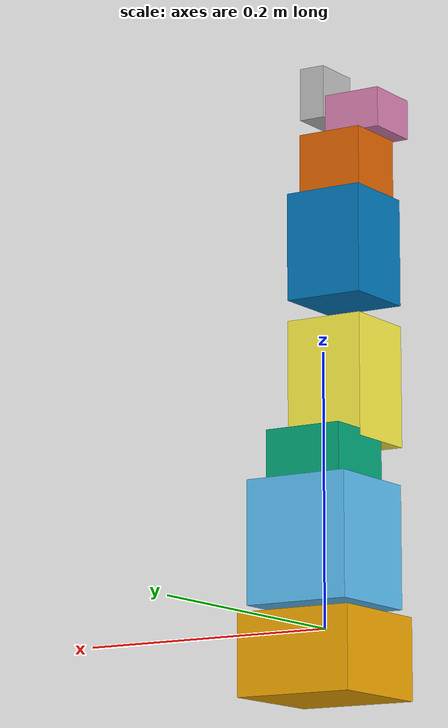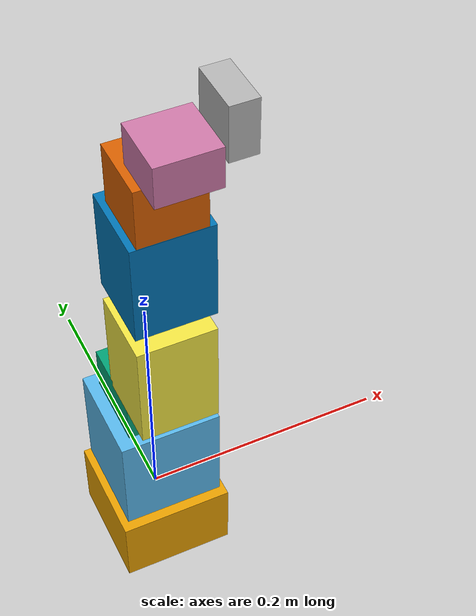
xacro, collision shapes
<?xml version="1.0"?>
<robot xmlns:xacro="http://www.ros.org/wiki/xacro">
  <xacro:property name="mesh" value="package://mycobot_description/meshes/mycobot_280_arduino"/>
  <xacro:property name="vel" value="3.14"/>
  <xacro:property name="eff" value="50.0"/>

  <!-- ================= LINKS ================= -->
  <link name="g_base">
    <visual>
      <geometry><mesh filename="${mesh}/G_base.dae"/></geometry>
      <origin xyz="-0.01 0 -0.032" rpy="0 0 1.5708"/>
    </visual>
    <collision>
      <geometry><box size="0.09 0.09 0.06"/></geometry>
      <origin xyz="0 0 -0.02" rpy="0 0 0"/>
    </collision>
    <xacro:box_inertial mass="0.5" size="0.05"/>
  </link>

  <link name="joint1">
    <visual>
      <geometry><mesh filename="${mesh}/joint1.dae"/></geometry>
      <origin xyz="0 0 0" rpy="0 0 -3.14159"/>
    </visual>
    <collision>
      <geometry><box size="0.08 0.08 0.09"/></geometry>
      <origin xyz="0 0 0.06" rpy="0 0 0"/>
    </collision>
    <xacro:box_inertial mass="0.3" size="0.04"/>
  </link>

  <link name="joint2">
    <visual>
      <geometry><mesh filename="${mesh}/joint2.dae"/></geometry>
      <origin xyz="0 0 -0.06096" rpy="0 0 -1.5708"/>
    </visual>
    <collision>
      <geometry><box size="0.06 0.06 0.08"/></geometry>
      <origin xyz="0 0 -0.03" rpy="0 0 0"/>
    </collision>
    <xacro:box_inertial mass="0.3" size="0.04"/>
  </link>

  <link name="joint3">
    <visual>
      <geometry><mesh filename="${mesh}/joint3.dae"/></geometry>
      <origin xyz="0 0 0.03256" rpy="0 -1.5708 0"/>
    </visual>
    <collision>
      <geometry><box size="0.09 0.06 0.06"/></geometry>
      <origin xyz="-0.05 0 0.03" rpy="0 0 0"/>
    </collision>
    <xacro:box_inertial mass="0.25" size="0.04"/>
  </link>

  <link name="joint4">
    <visual>
      <geometry><mesh filename="${mesh}/joint4.dae"/></geometry>
      <origin xyz="0 0 0.03056" rpy="0 -1.5708 0"/>
    </visual>
    <collision>
      <geometry><box size="0.08 0.06 0.06"/></geometry>
      <origin xyz="-0.04 0 0.03" rpy="0 0 0"/>
    </collision>
    <xacro:box_inertial mass="0.2" size="0.035"/>
  </link>

  <link name="joint5">
    <visual>
      <geometry><mesh filename="${mesh}/joint5.dae"/></geometry>
      <origin xyz="0 0 -0.03356" rpy="-1.5708 0 0"/>
    </visual>
    <collision>
      <geometry><box size="0.05 0.06 0.05"/></geometry>
      <origin xyz="0 0 -0.03" rpy="0 0 0"/>
    </collision>
    <xacro:box_inertial mass="0.2" size="0.035"/>
  </link>

  <link name="joint6">
    <visual>
      <geometry><mesh filename="${mesh}/joint6.dae"/></geometry>
      <origin xyz="0 0 -0.038" rpy="0 0 0"/>
    </visual>
    <collision>
      <geometry><box size="0.045 0.045 0.03"/></geometry>
      <origin xyz="0 0 -0.02" rpy="0 0 0"/>
    </collision>
    <xacro:box_inertial mass="0.15" size="0.03"/>
  </link>

  <link name="joint6_flange">
    <visual>
      <geometry><mesh filename="${mesh}/joint7.dae"/></geometry>
      <origin xyz="0 0 -0.012" rpy="0 0 0"/>
    </visual>
    <collision>
      <geometry><box size="0.04 0.04 0.02"/></geometry>
      <origin xyz="0 0 -0.01" rpy="0 0 0"/>
    </collision>
    <xacro:box_inertial mass="0.1" size="0.02"/>
  </link>

  <!-- ================= JOINTS ================= -->
  <joint name="g_base_to_joint1" type="fixed">
    <parent link="g_base"/>
    <child link="joint1"/>
    <origin xyz="0 0 0" rpy="0 0 0"/>
  </joint>

  <joint name="joint2_to_joint1" type="revolute">
    <axis xyz="0 0 1"/>
    <limit effort="${eff}" lower="-2.9321" upper="2.9321" velocity="${vel}"/>
    <parent link="joint1"/>
    <child link="joint2"/>
    <origin xyz="0 0 0.13156" rpy="0 0 0"/>
  </joint>

  <joint name="joint3_to_joint2" type="revolute">
    <axis xyz="0 0 1"/>
    <limit effort="${eff}" lower="-2.4434" upper="2.4434" velocity="${vel}"/>
    <parent link="joint2"/>
    <child link="joint3"/>
    <origin xyz="0 0 0" rpy="0 1.5708 -1.5708"/>
  </joint>

  <joint name="joint4_to_joint3" type="revolute">
    <axis xyz="0 0 1"/>
    <limit effort="${eff}" lower="-2.6179" upper="2.6179" velocity="${vel}"/>
    <parent link="joint3"/>
    <child link="joint4"/>
    <origin xyz="-0.1104 0 0" rpy="0 0 0"/>
  </joint>

  <joint name="joint5_to_joint4" type="revolute">
    <axis xyz="0 0 1"/>
    <limit effort="${eff}" lower="-2.6179" upper="2.6179" velocity="${vel}"/>
    <parent link="joint4"/>
    <child link="joint5"/>
    <origin xyz="-0.096 0 0.06462" rpy="0 0 -1.5708"/>
  </joint>

  <joint name="joint6_to_joint5" type="revolute">
    <axis xyz="0 0 1"/>
    <limit effort="${eff}" lower="-2.7052" upper="2.7925" velocity="${vel}"/>
    <parent link="joint5"/>
    <child link="joint6"/>
    <origin xyz="0 -0.07318 0" rpy="1.5708 -1.5708 0"/>
  </joint>

  <joint name="joint6output_to_joint6" type="revolute">
    <axis xyz="0 0 1"/>
    <limit effort="${eff}" lower="-3.14" upper="3.14159" velocity="${vel}"/>
    <parent link="joint6"/>
    <child link="joint6_flange"/>
    <origin xyz="0 0.0456 0" rpy="-1.5708 0 0"/>
  </joint>
</robot>
